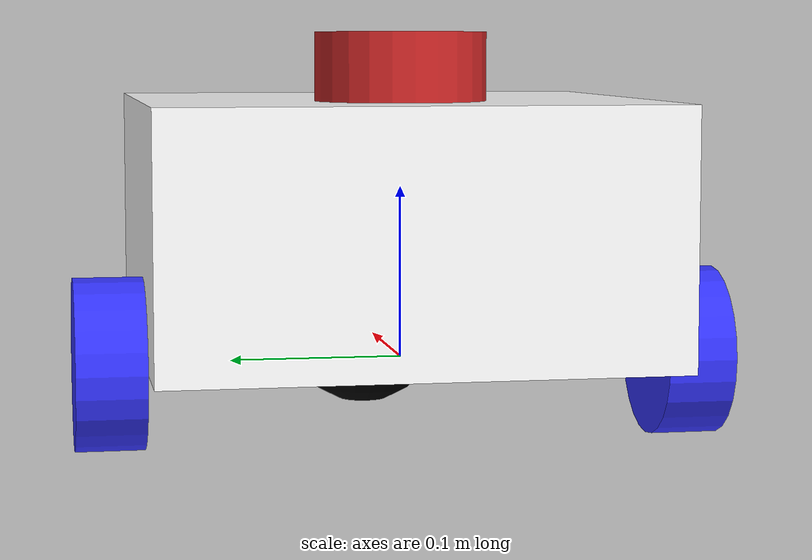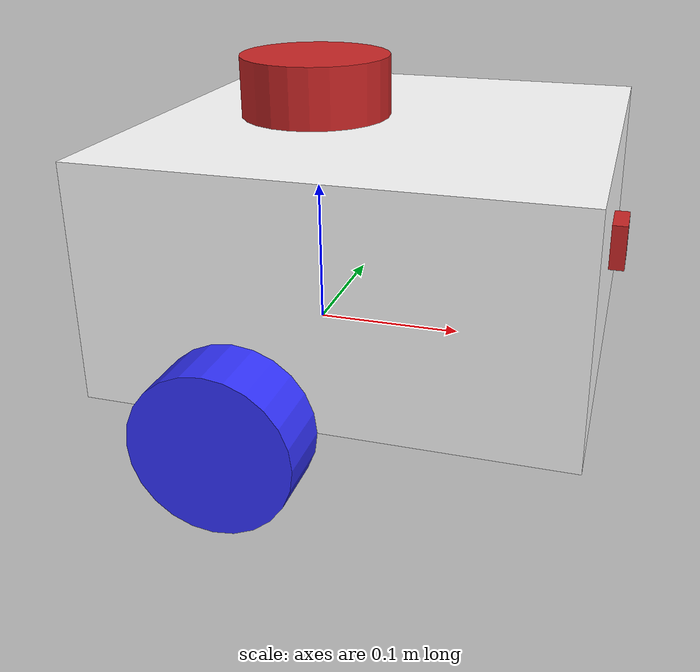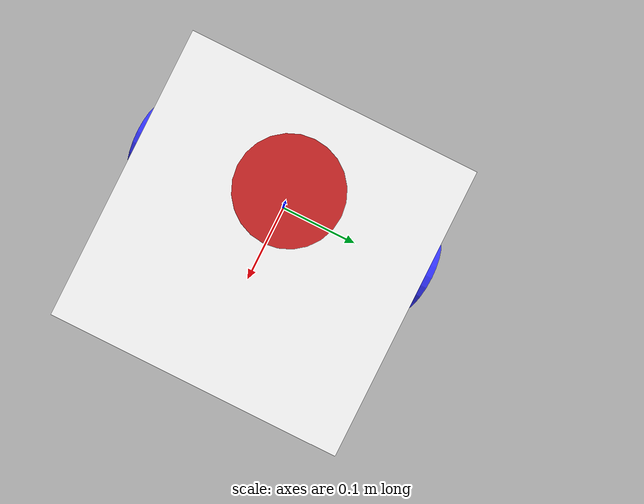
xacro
<?xml version="1.0"?>
<robot xmlns:xacro="http://www.ros.org/wiki/xacro" name="diff_drive_robot">

  <!-- XACRO property for pi -->
  <xacro:property name="pi" value="3.14159265359"/>

  <xacro:include filename="inertial_macros.xacro"/>
  <xacro:include filename="materials.xacro"/>
  <xacro:include filename="gazebo.xacro"/>

  <!-- Ground Reference -->
    <link name="base_footprint"/>

    <joint name="base_footprint_joint" type="fixed">
        <parent link="base_footprint"/>
        <child link="base_link"/>
        <origin xyz="-0.1 0 0" rpy="0 0 0"/>
    </joint>

  <!-- Base link -->

  <!-- Chassis link -->

  <link name="base_link">
    <visual>
      <origin xyz="0.15 0 0.075"/>
      <geometry>
        <box size="0.3 0.3 0.15"/>
      </geometry>
      <material name="white"/>
    </visual>
    <collision>
        <origin xyz="0.15 0 0.075"/>
        <geometry>
            <box size="0.3 0.3 0.15"/>
        </geometry>
    </collision>
    <xacro:inertial_box mass="0.5" x="0.3" y="0.3" z="0.15">
        <origin xyz="0.15 0 0.075" rpy="0 0 0"/>
    </xacro:inertial_box>
  </link>

  <!-- Left wheel -->
  <joint name="left_wheel_joint" type="continuous">
        <parent link="base_link"/>
        <child link="left_wheel"/>
        <!-- Y = chassis_width/2 + wheel_thickness/2 = 0.15 + 0.02 = 0.17 -->
        <origin xyz="0.1 0.17 0" rpy="-${pi/2} 0 0"/>
        <axis xyz="0 0 1"/>
    </joint>

    <link name="left_wheel">
        <visual>
            <geometry>
                <cylinder radius="0.05" length="0.04"/>
            </geometry>
            <material name="blue"/>
        </visual>
        <collision>
            <geometry>
                <cylinder radius="0.05" length="0.04"/>
            </geometry>
        </collision>
        <xacro:inertial_cylinder mass="0.1" length="0.04" radius="0.05">
            <origin xyz="0 0 0" rpy="0 0 0"/>
        </xacro:inertial_cylinder>
    </link>

    <!-- Right wheel -->
    <joint name="right_wheel_joint" type="continuous">
        <parent link="base_link"/>
        <child link="right_wheel"/>
        <!-- Y = -(chassis_width/2 + wheel_thickness/2) = -0.17 -->
        <origin xyz="0.1 -0.17 0" rpy="-${pi/2} 0 0"/>
        <axis xyz="0 0 1"/>
    </joint>

    <link name="right_wheel">
        <visual>
            <geometry>
                <cylinder radius="0.05" length="0.04"/>
            </geometry>
            <material name="blue"/>
        </visual>
        <collision>
            <geometry>
                <cylinder radius="0.05" length="0.04"/>
            </geometry>
        </collision>
        <xacro:inertial_cylinder mass="0.1" length="0.04" radius="0.05">
            <origin xyz="0 0 0" rpy="0 0 0"/>
        </xacro:inertial_cylinder>
    </link>

  <!-- Caster wheel -->
  <joint name="caster_wheel_joint" type="fixed">
    <parent link="base_link"/>
    <child link="caster_wheel"/>
    <origin xyz="0.24 0 0"/>
  </joint>

  <link name="caster_wheel">
    <visual>
      <geometry>
        <sphere radius="0.05"/>
      </geometry>
      <material name="black"/>
    </visual>
    <collision>
        <geometry>
            <sphere radius="0.05"/>
        </geometry>
    </collision>
    <xacro:inertial_sphere mass="0.1" radius="0.05">
        <origin xyz="0 0 0" rpy="0 0 0"/>
    </xacro:inertial_sphere>
  </link>
  <!-- Lidar -->
  <joint name="laser_joint" type="fixed">
        <parent link="base_link"/>
        <child link="laser_frame"/>
        <origin xyz="0.1 0 0.17" rpy="0 0 0"/>
    </joint>

    <link name="laser_frame">
        <visual>
            <geometry>
                <cylinder radius="0.05" length="0.04"/>
            </geometry>
            <material name="red"/>
        </visual>
        <collision>
            <geometry>
                <cylinder radius="0.05" length="0.04"/>
            </geometry>
        </collision>
        <xacro:inertial_cylinder mass="0.1" length="0.04" radius="0.05">
            <origin xyz="0 0 0" rpy="0 0 0"/>
        </xacro:inertial_cylinder>
    </link>

    <!-- Camera -->
    <joint name="camera_joint" type="fixed">
        <parent link="base_link"/>
        <child link="camera_link"/>
        <origin xyz="0.305 0 0.08" rpy="0 0 0"/>
    </joint>

    <link name="camera_link">
        <visual>
            <geometry>
                <box size="0.010 0.03 0.03"/>
            </geometry>
            <material name="red"/>
        </visual>
    </link>

    <joint name="camera_optical_joint" type="fixed">
        <parent link="camera_link"/>
        <child link="camera_link_optical"/>
        <origin xyz="0 0 0" rpy="${-pi/2} 0 ${-pi/2}"/>
    </joint>

    <link name="camera_link_optical"></link>

    <gazebo reference="camera_link">
        <material>Gazebo/Red</material>

        <sensor name="camera" type="camera">
            <pose> 0 0 0 0 0 0 </pose>
            <visualize>true</visualize>
            <update_rate>10</update_rate>
            <camera>
                <camera_info_topic>camera/camera_info</camera_info_topic>
                <horizontal_fov>1.089</horizontal_fov>
                <image>
                    <format>R8G8B8</format>
                    <width>640</width>
                    <height>480</height>
                </image>
                <clip>
                    <near>0.05</near>
                    <far>8.0</far>
                </clip>
            </camera>
            <topic>camera/image_raw</topic>
            <gz_frame_id>camera_link_optical</gz_frame_id>
        </sensor>
    </gazebo>

    <gazebo reference="laser_frame">
        <material>Gazebo/Red</material>

        <sensor name="laser" type="gpu_lidar">
            <pose> 0 0 0 0 0 0 </pose>
            <visualize>true</visualize>
            <update_rate>10</update_rate>
            <lidar>
                <scan>
                    <horizontal>
                        <samples>360</samples>
                        <min_angle>-3.14</min_angle>
                        <max_angle>3.14</max_angle>
                    </horizontal>
                </scan>
                <range>
                    <min>0.3</min>
                    <max>12</max>
                </range>
            </lidar>
            <topic>scan</topic>
            <gz_frame_id>laser_frame</gz_frame_id>
        </sensor>
    </gazebo>

  <!-- IMU -->
  <link name="imu_frame"/>

    <joint name="imu_joint" type="fixed">
    <parent link="base_link"/>
    <child link="imu_frame"/>
    <origin xyz="0 0 0.08" rpy="0 0 0"/>
    </joint>

</robot>

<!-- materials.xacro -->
<robot xmlns:xacro="http://www.ros.org/wiki/xacro">

  <!-- Materials -->
  <material name="white">
    <color rgba="1 1 1 1"/>
  </material>
  <material name="orange">
    <color rgba="1 0.3 0.1 1"/>
  </material>
  <material name="blue">
    <color rgba="0.2 0.2 1 1"/>
  </material>
  <material name="black">
    <color rgba="0 0 0 1"/>
  </material>

</robot>
